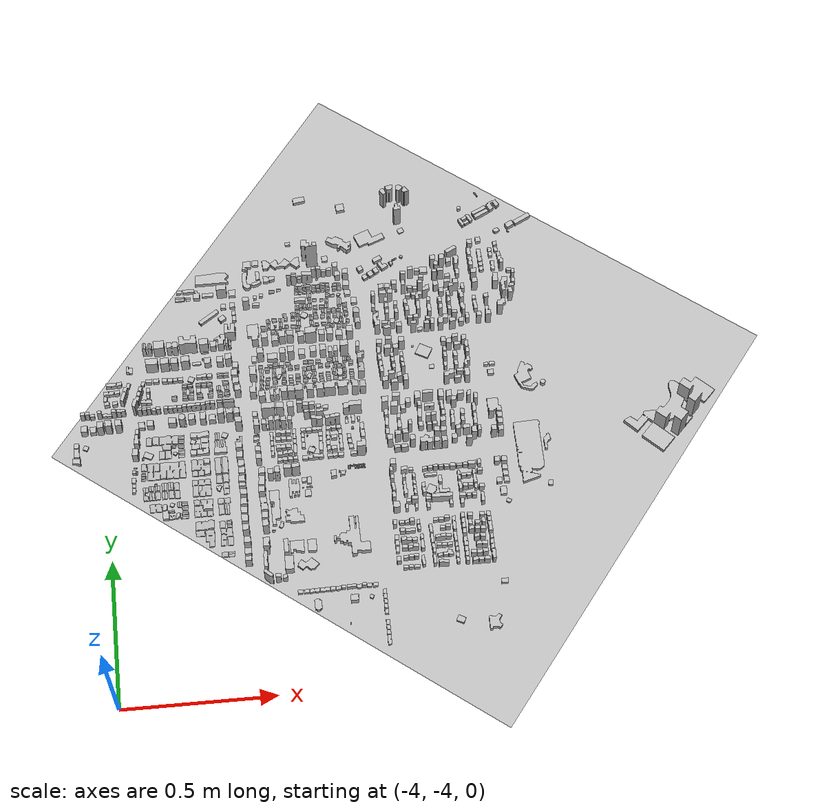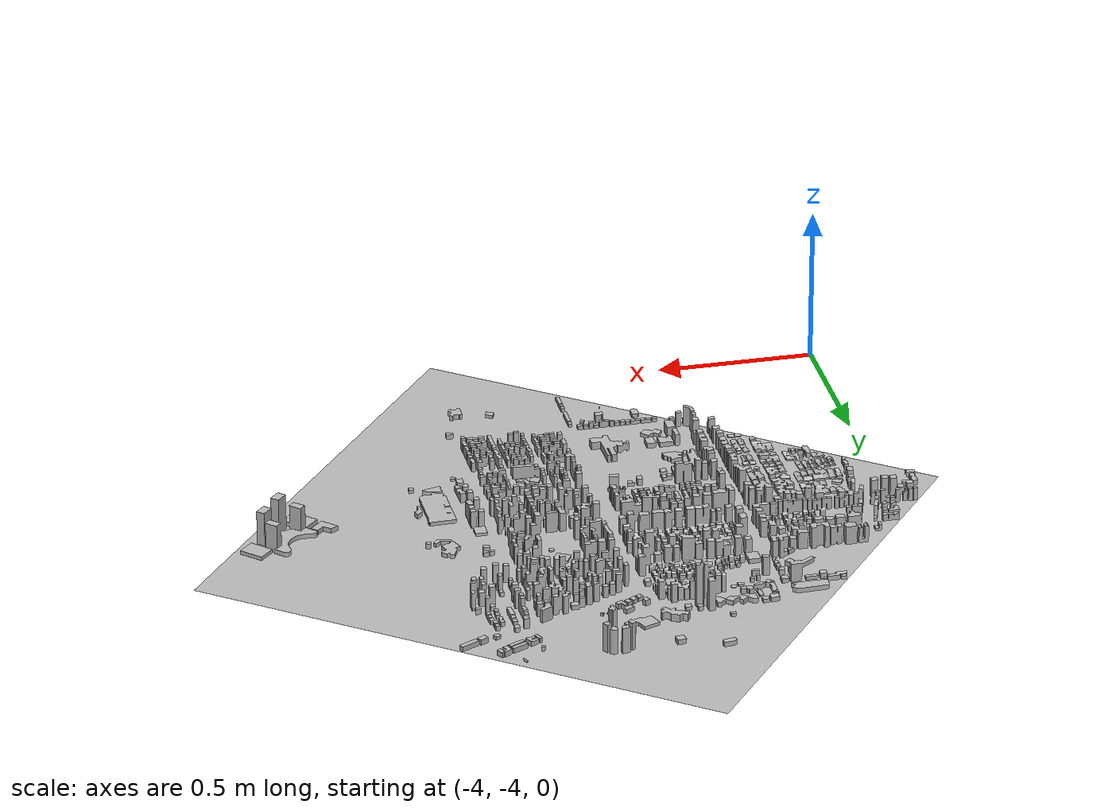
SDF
<sdf version="1.7">
 <world name="default">
  <light name="sun" type="directional">
   <pose>0 0 10 0 -0 0</pose>
   <diffuse>0.8 0.8 0.8 1</diffuse>
   <specular>0.2 0.2 0.2 1</specular>
   <attenuation>
    <range>1000</range>
    <constant>0.9</constant>
    <linear>0.01</linear>
    <quadratic>0.001</quadratic>
   </attenuation>
   <direction>-0.5 0.1 -0.9</direction>
   <spot><inner_angle>0</inner_angle><outer_angle>0</outer_angle><falloff>0</falloff></spot>
  </light>
  <gravity>0 0 -9.8</gravity>
  <magnetic_field>6e-06 2.3e-05 -4.2e-05</magnetic_field>
  <atmosphere type="adiabatic"/>
  <physics type="ode">
   <max_step_size>0.001</max_step_size>
   <real_time_factor>1</real_time_factor>
   <real_time_update_rate>1000</real_time_update_rate>
  </physics>
  <scene><ambient>0.4 0.4 0.4 1</ambient><background>0.7 0.7 0.7 1</background><shadows>1</shadows></scene>
  <spherical_coordinates>
   <surface_model>EARTH_WGS84</surface_model>
   <latitude_deg>0</latitude_deg>
   <longitude_deg>0</longitude_deg>
   <elevation>0</elevation>
   <heading_deg>0</heading_deg>
  </spherical_coordinates>
  <model name="abu_dhabi_model">
   <pose>-3 -3 3.5 0 0 -0.65</pose>
   <static>1</static>
   <link name="terrain">
    <visual name="visual">
     <geometry>
      <mesh><uri>model://abu_dhabi_model/media/terrain.dae</uri><scale>0.025 0.025 0.04</scale></mesh>
     </geometry>
     <pose>0 0 -3.5 0 -0 0</pose>
    </visual>
    <collision name="collision">
     <geometry>
      <mesh><uri>model://abu_dhabi_model/media/terrain.dae</uri><scale>0.025 0.025 0.04</scale></mesh>
     </geometry>
     <pose>0 0 -3.5 0 -0 0</pose>
    </collision>
   </link>
   <link name="buildings">
    <visual name="visual">
     <geometry>
      <mesh><uri>model://abu_dhabi_model/media/buildings.dae</uri><scale>0.025 0.025 0.04</scale></mesh>
     </geometry>
     <pose>0 0 -3.5 0 -0 0</pose>
    </visual>
    <collision name="collision">
     <geometry>
      <mesh><uri>model://abu_dhabi_model/media/buildings.dae</uri><scale>0.025 0.025 0.04</scale></mesh>
     </geometry>
     <pose>0 0 -3.5 0 -0 0</pose>
    </collision>
   </link>
  </model>
 </world>
</sdf>
